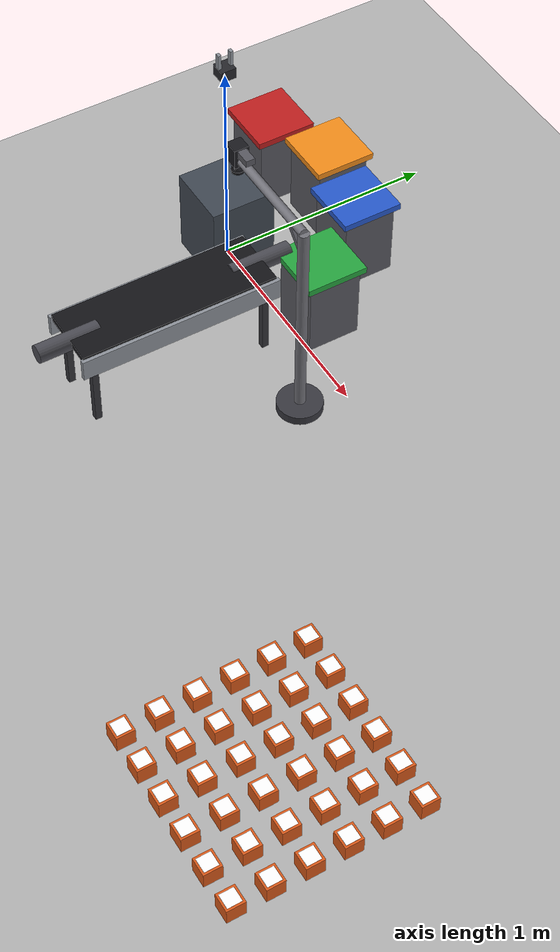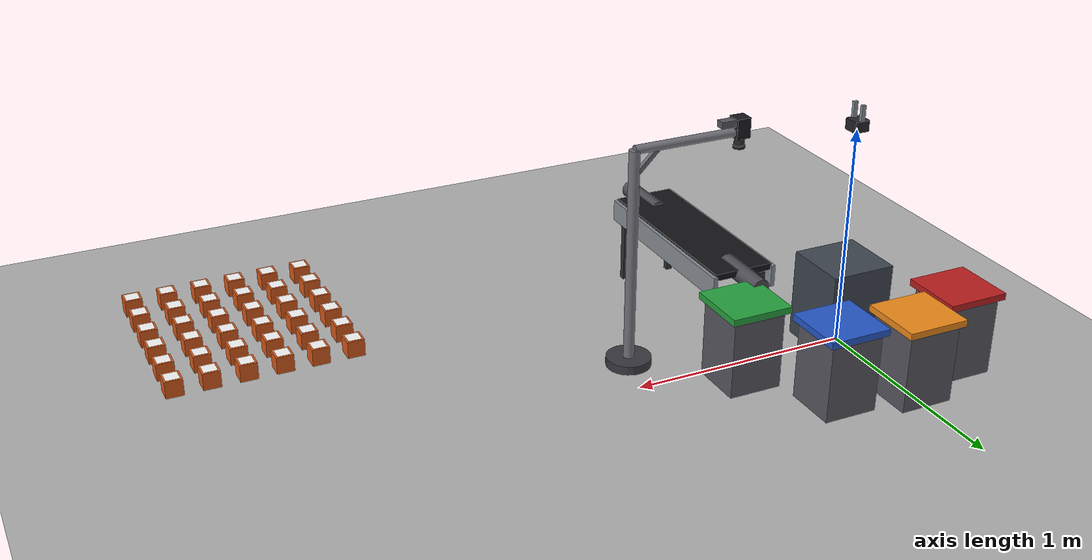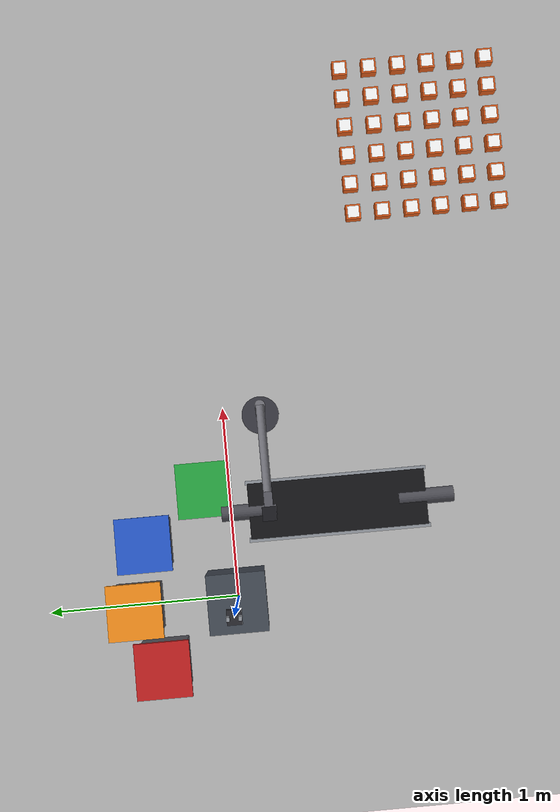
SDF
<?xml version="1.0" ?>
<sdf version="1.9">
  <world name="cell_world">

    <physics name="1ms" type="ignored">
      <max_step_size>0.001</max_step_size>
      <real_time_factor>1.0</real_time_factor>
    </physics>
    <plugin filename="gz-sim-physics-system"
            name="gz::sim::systems::Physics"/>
    <plugin filename="gz-sim-user-commands-system"
            name="gz::sim::systems::UserCommands"/>
    <plugin filename="gz-sim-scene-broadcaster-system"
            name="gz::sim::systems::SceneBroadcaster"/>
    <plugin filename="gz-sim-sensors-system"
            name="gz::sim::systems::Sensors">
      <render_engine>ogre2</render_engine>
    </plugin>

    <light type="directional" name="sun">
      <cast_shadows>true</cast_shadows>
      <pose>0 0 10 0 0 0</pose>
      <diffuse>1 1 1 1</diffuse>
      <specular>0.5 0.5 0.5 1</specular>
      <direction>-0.4 0.3 -1</direction>
    </light>

    <!-- ground -->
    <model name="factory_floor">
      <static>true</static>
      <link name="link">
        <collision name="c"><geometry><plane><normal>0 0 1</normal>
          <size>10 10</size></plane></geometry></collision>
        <visual name="v"><geometry><plane><normal>0 0 1</normal>
          <size>10 10</size></plane></geometry>
          <material><diffuse>0.7 0.7 0.7 1</diffuse></material></visual>
      </link>
    </model>

    <!-- ARM PEDESTAL: 0.40 m tall box under the UR5e at origin -->
    <model name="arm_pedestal">
      <static>true</static>
      <pose>0 0 0.20 0 0 0</pose>   <!-- center at 0.20 => top at 0.40 -->
      <link name="link">
        <collision name="c"><geometry><box><size>0.30 0.30 0.40</size></box></geometry></collision>
        <visual name="v"><geometry><box><size>0.30 0.30 0.40</size></box></geometry>
          <material><diffuse>0.25 0.28 0.32 1</diffuse></material></visual>
      </link>
    </model>

    <model name="conveyor">
      <static>true</static>
      <pose>0.45 -0.55 0 0 0 0</pose>
      <link name="link">

        <!-- rubber belt surface (thin dark top at z~0.40) -->
        <visual name="belt">
          <pose>0 0 0.385 0 0 0</pose>
          <geometry><box><size>0.28 0.90 0.03</size></box></geometry>
          <material><diffuse>0.08 0.08 0.09 1</diffuse>
            <specular>0.2 0.2 0.2 1</specular></material>
        </visual>

        <!-- metal side rails (left / right along the run) -->
        <visual name="rail_left">
          <pose>0.145 0 0.34 0 0 0</pose>
          <geometry><box><size>0.02 0.92 0.10</size></box></geometry>
          <material><diffuse>0.55 0.57 0.60 1</diffuse>
            <specular>0.6 0.6 0.6 1</specular></material>
        </visual>
        <visual name="rail_right">
          <pose>-0.145 0 0.34 0 0 0</pose>
          <geometry><box><size>0.02 0.92 0.10</size></box></geometry>
          <material><diffuse>0.55 0.57 0.60 1</diffuse>
            <specular>0.6 0.6 0.6 1</specular></material>
        </visual>

        <!-- end rollers (cylinders across the belt at each end) -->
        <visual name="roller_front">
          <pose>0 0.45 0.37 1.5708 0 0</pose>
          <geometry><cylinder><radius>0.04</radius><length>0.28</length></cylinder></geometry>
          <material><diffuse>0.3 0.3 0.33 1</diffuse></material>
        </visual>
        <visual name="roller_back">
          <pose>0 -0.45 0.37 1.5708 0 0</pose>
          <geometry><cylinder><radius>0.04</radius><length>0.28</length></cylinder></geometry>
          <material><diffuse>0.3 0.3 0.33 1</diffuse></material>
        </visual>

        <!-- support legs (4) -->
        <visual name="leg_1"><pose>0.12 0.40 0.17 0 0 0</pose>
          <geometry><box><size>0.03 0.03 0.34</size></box></geometry>
          <material><diffuse>0.2 0.2 0.22 1</diffuse></material></visual>
        <visual name="leg_2"><pose>-0.12 0.40 0.17 0 0 0</pose>
          <geometry><box><size>0.03 0.03 0.34</size></box></geometry>
          <material><diffuse>0.2 0.2 0.22 1</diffuse></material></visual>
        <visual name="leg_3"><pose>0.12 -0.40 0.17 0 0 0</pose>
          <geometry><box><size>0.03 0.03 0.34</size></box></geometry>
          <material><diffuse>0.2 0.2 0.22 1</diffuse></material></visual>
        <visual name="leg_4"><pose>-0.12 -0.40 0.17 0 0 0</pose>
          <geometry><box><size>0.03 0.03 0.34</size></box></geometry>
          <material><diffuse>0.2 0.2 0.22 1</diffuse></material></visual>

        <!-- single simple collision block (part rests on belt top) -->
        <collision name="c">
          <pose>0 0 0.35 0 0 0</pose>
          <geometry><box><size>0.28 0.90 0.10</size></box></geometry>
        </collision>
      </link>
    </model>

    <!-- TOWER TABLE: 0.40 m table under the stacking area (0.45, 0.20) -->

    <!-- initial single part (for the arm-motion / grasp test before the
         spawner is added). Sits on the conveyor at the pick point. -->

    <!-- VISUAL parallel-jaw gripper. Spawned here; gripper_follower node
         glues it to tool0. Starts near the arm flange. -->
    <model name="gripper">
      <pose>0 0 1.0 0 0 0</pose>
      <link name="link">
        <!-- gripper body -->
        <visual name="body">
          <pose>0 0 0.025 0 0 0</pose>
          <geometry><box><size>0.07 0.07 0.05</size></box></geometry>
          <material><diffuse>0.15 0.15 0.17 1</diffuse></material>
        </visual>
        <!-- left finger -->
        <visual name="finger_l">
          <pose>0 0.028 0.085 0 0 0</pose>
          <geometry><box><size>0.02 0.015 0.07</size></box></geometry>
          <material><diffuse>0.55 0.57 0.6 1</diffuse></material>
        </visual>
        <!-- right finger -->
        <visual name="finger_r">
          <pose>0 -0.028 0.085 0 0 0</pose>
          <geometry><box><size>0.02 0.015 0.07</size></box></geometry>
          <material><diffuse>0.55 0.57 0.6 1</diffuse></material>
        </visual>
        <inertial><mass>0.001</mass>
          <inertia><ixx>1e-6</ixx><iyy>1e-6</iyy><izz>1e-6</izz>
                   <ixy>0</ixy><ixz>0</ixz><iyz>0</iyz></inertia></inertial>
      </link>
      <!-- no gravity: it's kinematically driven by the follower -->
      <static>false</static>
    </model>

    <model name="cube_0">
      <pose>2.0 -1.6 0.04 0 0 0</pose>
      <link name="link">
        <gravity>0</gravity>
        <inertial><mass>0.2</mass>
          <inertia><ixx>2e-4</ixx><iyy>2e-4</iyy><izz>2e-4</izz>
                   <ixy>0</ixy><ixz>0</ixz><iyz>0</iyz></inertia></inertial>
        <visual name="body">
          <geometry><box><size>0.08 0.08 0.08</size></box></geometry>
          <material><diffuse>0.85 0.35 0.1 1</diffuse></material>
        </visual>
        <visual name="label">
          <pose>0 0 0.0405 0 0 0</pose>
          <geometry><box><size>0.062 0.062 0.001</size></box></geometry>
          <material>
            <ambient>1 1 1 1</ambient><diffuse>1 1 1 1</diffuse>
            <pbr><metal>
              <albedo_map>/home/cxt13/openplc_ros2_cell_ws/src/pick_place_cell_gazebo/models/parcel_labels/materials/textures/label_0.png</albedo_map>
              <metalness>0.0</metalness><roughness>1.0</roughness>
            </metal></pbr>
          </material>
        </visual>
      </link>
    </model>
    <model name="cube_1">
      <pose>2.16 -1.6 0.04 0 0 0</pose>
      <link name="link">
        <gravity>0</gravity>
        <inertial><mass>0.2</mass>
          <inertia><ixx>2e-4</ixx><iyy>2e-4</iyy><izz>2e-4</izz>
                   <ixy>0</ixy><ixz>0</ixz><iyz>0</iyz></inertia></inertial>
        <visual name="body">
          <geometry><box><size>0.08 0.08 0.08</size></box></geometry>
          <material><diffuse>0.85 0.35 0.1 1</diffuse></material>
        </visual>
        <visual name="label">
          <pose>0 0 0.0405 0 0 0</pose>
          <geometry><box><size>0.062 0.062 0.001</size></box></geometry>
          <material>
            <ambient>1 1 1 1</ambient><diffuse>1 1 1 1</diffuse>
            <pbr><metal>
              <albedo_map>/home/cxt13/openplc_ros2_cell_ws/src/pick_place_cell_gazebo/models/parcel_labels/materials/textures/label_1.png</albedo_map>
              <metalness>0.0</metalness><roughness>1.0</roughness>
            </metal></pbr>
          </material>
        </visual>
      </link>
    </model>
    <model name="cube_2">
      <pose>2.32 -1.6 0.04 0 0 0</pose>
      <link name="link">
        <gravity>0</gravity>
        <inertial><mass>0.2</mass>
          <inertia><ixx>2e-4</ixx><iyy>2e-4</iyy><izz>2e-4</izz>
                   <ixy>0</ixy><ixz>0</ixz><iyz>0</iyz></inertia></inertial>
        <visual name="body">
          <geometry><box><size>0.08 0.08 0.08</size></box></geometry>
          <material><diffuse>0.85 0.35 0.1 1</diffuse></material>
        </visual>
        <visual name="label">
          <pose>0 0 0.0405 0 0 0</pose>
          <geometry><box><size>0.062 0.062 0.001</size></box></geometry>
          <material>
            <ambient>1 1 1 1</ambient><diffuse>1 1 1 1</diffuse>
            <pbr><metal>
              <albedo_map>/home/cxt13/openplc_ros2_cell_ws/src/pick_place_cell_gazebo/models/parcel_labels/materials/textures/label_2.png</albedo_map>
              <metalness>0.0</metalness><roughness>1.0</roughness>
            </metal></pbr>
          </material>
        </visual>
      </link>
    </model>
    <model name="cube_3">
      <pose>2.48 -1.6 0.04 0 0 0</pose>
      <link name="link">
        <gravity>0</gravity>
        <inertial><mass>0.2</mass>
          <inertia><ixx>2e-4</ixx><iyy>2e-4</iyy><izz>2e-4</izz>
                   <ixy>0</ixy><ixz>0</ixz><iyz>0</iyz></inertia></inertial>
        <visual name="body">
          <geometry><box><size>0.08 0.08 0.08</size></box></geometry>
          <material><diffuse>0.85 0.35 0.1 1</diffuse></material>
        </visual>
        <visual name="label">
          <pose>0 0 0.0405 0 0 0</pose>
          <geometry><box><size>0.062 0.062 0.001</size></box></geometry>
          <material>
            <ambient>1 1 1 1</ambient><diffuse>1 1 1 1</diffuse>
            <pbr><metal>
              <albedo_map>/home/cxt13/openplc_ros2_cell_ws/src/pick_place_cell_gazebo/models/parcel_labels/materials/textures/label_3.png</albedo_map>
              <metalness>0.0</metalness><roughness>1.0</roughness>
            </metal></pbr>
          </material>
        </visual>
      </link>
    </model>
    <model name="cube_4">
      <pose>2.64 -1.6 0.04 0 0 0</pose>
      <link name="link">
        <gravity>0</gravity>
        <inertial><mass>0.2</mass>
          <inertia><ixx>2e-4</ixx><iyy>2e-4</iyy><izz>2e-4</izz>
                   <ixy>0</ixy><ixz>0</ixz><iyz>0</iyz></inertia></inertial>
        <visual name="body">
          <geometry><box><size>0.08 0.08 0.08</size></box></geometry>
          <material><diffuse>0.85 0.35 0.1 1</diffuse></material>
        </visual>
        <visual name="label">
          <pose>0 0 0.0405 0 0 0</pose>
          <geometry><box><size>0.062 0.062 0.001</size></box></geometry>
          <material>
            <ambient>1 1 1 1</ambient><diffuse>1 1 1 1</diffuse>
            <pbr><metal>
              <albedo_map>/home/cxt13/openplc_ros2_cell_ws/src/pick_place_cell_gazebo/models/parcel_labels/materials/textures/label_4.png</albedo_map>
              <metalness>0.0</metalness><roughness>1.0</roughness>
            </metal></pbr>
          </material>
        </visual>
      </link>
    </model>
    <model name="cube_5">
      <pose>2.8 -1.6 0.04 0 0 0</pose>
      <link name="link">
        <gravity>0</gravity>
        <inertial><mass>0.2</mass>
          <inertia><ixx>2e-4</ixx><iyy>2e-4</iyy><izz>2e-4</izz>
                   <ixy>0</ixy><ixz>0</ixz><iyz>0</iyz></inertia></inertial>
        <visual name="body">
          <geometry><box><size>0.08 0.08 0.08</size></box></geometry>
          <material><diffuse>0.85 0.35 0.1 1</diffuse></material>
        </visual>
        <visual name="label">
          <pose>0 0 0.0405 0 0 0</pose>
          <geometry><box><size>0.062 0.062 0.001</size></box></geometry>
          <material>
            <ambient>1 1 1 1</ambient><diffuse>1 1 1 1</diffuse>
            <pbr><metal>
              <albedo_map>/home/cxt13/openplc_ros2_cell_ws/src/pick_place_cell_gazebo/models/parcel_labels/materials/textures/label_5.png</albedo_map>
              <metalness>0.0</metalness><roughness>1.0</roughness>
            </metal></pbr>
          </material>
        </visual>
      </link>
    </model>
    <model name="cube_6">
      <pose>2.0 -1.44 0.04 0 0 0</pose>
      <link name="link">
        <gravity>0</gravity>
        <inertial><mass>0.2</mass>
          <inertia><ixx>2e-4</ixx><iyy>2e-4</iyy><izz>2e-4</izz>
                   <ixy>0</ixy><ixz>0</ixz><iyz>0</iyz></inertia></inertial>
        <visual name="body">
          <geometry><box><size>0.08 0.08 0.08</size></box></geometry>
          <material><diffuse>0.85 0.35 0.1 1</diffuse></material>
        </visual>
        <visual name="label">
          <pose>0 0 0.0405 0 0 0</pose>
          <geometry><box><size>0.062 0.062 0.001</size></box></geometry>
          <material>
            <ambient>1 1 1 1</ambient><diffuse>1 1 1 1</diffuse>
            <pbr><metal>
              <albedo_map>/home/cxt13/openplc_ros2_cell_ws/src/pick_place_cell_gazebo/models/parcel_labels/materials/textures/label_6.png</albedo_map>
              <metalness>0.0</metalness><roughness>1.0</roughness>
            </metal></pbr>
          </material>
        </visual>
      </link>
    </model>
    <model name="cube_7">
      <pose>2.16 -1.44 0.04 0 0 0</pose>
      <link name="link">
        <gravity>0</gravity>
        <inertial><mass>0.2</mass>
          <inertia><ixx>2e-4</ixx><iyy>2e-4</iyy><izz>2e-4</izz>
                   <ixy>0</ixy><ixz>0</ixz><iyz>0</iyz></inertia></inertial>
        <visual name="body">
          <geometry><box><size>0.08 0.08 0.08</size></box></geometry>
          <material><diffuse>0.85 0.35 0.1 1</diffuse></material>
        </visual>
        <visual name="label">
          <pose>0 0 0.0405 0 0 0</pose>
          <geometry><box><size>0.062 0.062 0.001</size></box></geometry>
          <material>
            <ambient>1 1 1 1</ambient><diffuse>1 1 1 1</diffuse>
            <pbr><metal>
              <albedo_map>/home/cxt13/openplc_ros2_cell_ws/src/pick_place_cell_gazebo/models/parcel_labels/materials/textures/label_7.png</albedo_map>
              <metalness>0.0</metalness><roughness>1.0</roughness>
            </metal></pbr>
          </material>
        </visual>
      </link>
    </model>
    <model name="cube_8">
      <pose>2.32 -1.44 0.04 0 0 0</pose>
      <link name="link">
        <gravity>0</gravity>
        <inertial><mass>0.2</mass>
          <inertia><ixx>2e-4</ixx><iyy>2e-4</iyy><izz>2e-4</izz>
                   <ixy>0</ixy><ixz>0</ixz><iyz>0</iyz></inertia></inertial>
        <visual name="body">
          <geometry><box><size>0.08 0.08 0.08</size></box></geometry>
          <material><diffuse>0.85 0.35 0.1 1</diffuse></material>
        </visual>
        <visual name="label">
          <pose>0 0 0.0405 0 0 0</pose>
          <geometry><box><size>0.062 0.062 0.001</size></box></geometry>
          <material>
            <ambient>1 1 1 1</ambient><diffuse>1 1 1 1</diffuse>
            <pbr><metal>
              <albedo_map>/home/cxt13/openplc_ros2_cell_ws/src/pick_place_cell_gazebo/models/parcel_labels/materials/textures/label_8.png</albedo_map>
              <metalness>0.0</metalness><roughness>1.0</roughness>
            </metal></pbr>
          </material>
        </visual>
      </link>
    </model>
    <model name="cube_9">
      <pose>2.48 -1.44 0.04 0 0 0</pose>
      <link name="link">
        <gravity>0</gravity>
        <inertial><mass>0.2</mass>
          <inertia><ixx>2e-4</ixx><iyy>2e-4</iyy><izz>2e-4</izz>
                   <ixy>0</ixy><ixz>0</ixz><iyz>0</iyz></inertia></inertial>
        <visual name="body">
          <geometry><box><size>0.08 0.08 0.08</size></box></geometry>
          <material><diffuse>0.85 0.35 0.1 1</diffuse></material>
        </visual>
        <visual name="label">
          <pose>0 0 0.0405 0 0 0</pose>
          <geometry><box><size>0.062 0.062 0.001</size></box></geometry>
          <material>
            <ambient>1 1 1 1</ambient><diffuse>1 1 1 1</diffuse>
            <pbr><metal>
              <albedo_map>/home/cxt13/openplc_ros2_cell_ws/src/pick_place_cell_gazebo/models/parcel_labels/materials/textures/label_9.png</albedo_map>
              <metalness>0.0</metalness><roughness>1.0</roughness>
            </metal></pbr>
          </material>
        </visual>
      </link>
    </model>
    <model name="cube_10">
      <pose>2.64 -1.44 0.04 0 0 0</pose>
      <link name="link">
        <gravity>0</gravity>
        <inertial><mass>0.2</mass>
          <inertia><ixx>2e-4</ixx><iyy>2e-4</iyy><izz>2e-4</izz>
                   <ixy>0</ixy><ixz>0</ixz><iyz>0</iyz></inertia></inertial>
        <visual name="body">
          <geometry><box><size>0.08 0.08 0.08</size></box></geometry>
          <material><diffuse>0.85 0.35 0.1 1</diffuse></material>
        </visual>
        <visual name="label">
          <pose>0 0 0.0405 0 0 0</pose>
          <geometry><box><size>0.062 0.062 0.001</size></box></geometry>
          <material>
            <ambient>1 1 1 1</ambient><diffuse>1 1 1 1</diffuse>
            <pbr><metal>
              <albedo_map>/home/cxt13/openplc_ros2_cell_ws/src/pick_place_cell_gazebo/models/parcel_labels/materials/textures/label_10.png</albedo_map>
              <metalness>0.0</metalness><roughness>1.0</roughness>
            </metal></pbr>
          </material>
        </visual>
      </link>
    </model>
    <model name="cube_11">
      <pose>2.8 -1.44 0.04 0 0 0</pose>
      <link name="link">
        <gravity>0</gravity>
        <inertial><mass>0.2</mass>
          <inertia><ixx>2e-4</ixx><iyy>2e-4</iyy><izz>2e-4</izz>
                   <ixy>0</ixy><ixz>0</ixz><iyz>0</iyz></inertia></inertial>
        <visual name="body">
          <geometry><box><size>0.08 0.08 0.08</size></box></geometry>
          <material><diffuse>0.85 0.35 0.1 1</diffuse></material>
        </visual>
        <visual name="label">
          <pose>0 0 0.0405 0 0 0</pose>
          <geometry><box><size>0.062 0.062 0.001</size></box></geometry>
          <material>
            <ambient>1 1 1 1</ambient><diffuse>1 1 1 1</diffuse>
            <pbr><metal>
              <albedo_map>/home/cxt13/openplc_ros2_cell_ws/src/pick_place_cell_gazebo/models/parcel_labels/materials/textures/label_11.png</albedo_map>
              <metalness>0.0</metalness><roughness>1.0</roughness>
            </metal></pbr>
          </material>
        </visual>
      </link>
    </model>
    <model name="cube_12">
      <pose>2.0 -1.28 0.04 0 0 0</pose>
      <link name="link">
        <gravity>0</gravity>
        <inertial><mass>0.2</mass>
          <inertia><ixx>2e-4</ixx><iyy>2e-4</iyy><izz>2e-4</izz>
                   <ixy>0</ixy><ixz>0</ixz><iyz>0</iyz></inertia></inertial>
        <visual name="body">
          <geometry><box><size>0.08 0.08 0.08</size></box></geometry>
          <material><diffuse>0.85 0.35 0.1 1</diffuse></material>
        </visual>
        <visual name="label">
          <pose>0 0 0.0405 0 0 0</pose>
          <geometry><box><size>0.062 0.062 0.001</size></box></geometry>
          <material>
            <ambient>1 1 1 1</ambient><diffuse>1 1 1 1</diffuse>
            <pbr><metal>
              <albedo_map>/home/cxt13/openplc_ros2_cell_ws/src/pick_place_cell_gazebo/models/parcel_labels/materials/textures/label_12.png</albedo_map>
              <metalness>0.0</metalness><roughness>1.0</roughness>
            </metal></pbr>
          </material>
        </visual>
      </link>
    </model>
    <model name="cube_13">
      <pose>2.16 -1.28 0.04 0 0 0</pose>
      <link name="link">
        <gravity>0</gravity>
        <inertial><mass>0.2</mass>
          <inertia><ixx>2e-4</ixx><iyy>2e-4</iyy><izz>2e-4</izz>
                   <ixy>0</ixy><ixz>0</ixz><iyz>0</iyz></inertia></inertial>
        <visual name="body">
          <geometry><box><size>0.08 0.08 0.08</size></box></geometry>
          <material><diffuse>0.85 0.35 0.1 1</diffuse></material>
        </visual>
        <visual name="label">
          <pose>0 0 0.0405 0 0 0</pose>
          <geometry><box><size>0.062 0.062 0.001</size></box></geometry>
          <material>
            <ambient>1 1 1 1</ambient><diffuse>1 1 1 1</diffuse>
            <pbr><metal>
              <albedo_map>/home/cxt13/openplc_ros2_cell_ws/src/pick_place_cell_gazebo/models/parcel_labels/materials/textures/label_13.png</albedo_map>
              <metalness>0.0</metalness><roughness>1.0</roughness>
            </metal></pbr>
          </material>
        </visual>
      </link>
    </model>
    <model name="cube_14">
      <pose>2.32 -1.28 0.04 0 0 0</pose>
      <link name="link">
        <gravity>0</gravity>
        <inertial><mass>0.2</mass>
          <inertia><ixx>2e-4</ixx><iyy>2e-4</iyy><izz>2e-4</izz>
                   <ixy>0</ixy><ixz>0</ixz><iyz>0</iyz></inertia></inertial>
        <visual name="body">
          <geometry><box><size>0.08 0.08 0.08</size></box></geometry>
          <material><diffuse>0.85 0.35 0.1 1</diffuse></material>
        </visual>
        <visual name="label">
          <pose>0 0 0.0405 0 0 0</pose>
          <geometry><box><size>0.062 0.062 0.001</size></box></geometry>
          <material>
            <ambient>1 1 1 1</ambient><diffuse>1 1 1 1</diffuse>
            <pbr><metal>
              <albedo_map>/home/cxt13/openplc_ros2_cell_ws/src/pick_place_cell_gazebo/models/parcel_labels/materials/textures/label_14.png</albedo_map>
              <metalness>0.0</metalness><roughness>1.0</roughness>
            </metal></pbr>
          </material>
        </visual>
      </link>
    </model>
    <model name="cube_15">
      <pose>2.48 -1.28 0.04 0 0 0</pose>
      <link name="link">
        <gravity>0</gravity>
        <inertial><mass>0.2</mass>
          <inertia><ixx>2e-4</ixx><iyy>2e-4</iyy><izz>2e-4</izz>
                   <ixy>0</ixy><ixz>0</ixz><iyz>0</iyz></inertia></inertial>
        <visual name="body">
          <geometry><box><size>0.08 0.08 0.08</size></box></geometry>
          <material><diffuse>0.85 0.35 0.1 1</diffuse></material>
        </visual>
        <visual name="label">
          <pose>0 0 0.0405 0 0 0</pose>
          <geometry><box><size>0.062 0.062 0.001</size></box></geometry>
          <material>
            <ambient>1 1 1 1</ambient><diffuse>1 1 1 1</diffuse>
            <pbr><metal>
              <albedo_map>/home/cxt13/openplc_ros2_cell_ws/src/pick_place_cell_gazebo/models/parcel_labels/materials/textures/label_15.png</albedo_map>
              <metalness>0.0</metalness><roughness>1.0</roughness>
            </metal></pbr>
          </material>
        </visual>
      </link>
    </model>
    <model name="cube_16">
      <pose>2.64 -1.28 0.04 0 0 0</pose>
      <link name="link">
        <gravity>0</gravity>
        <inertial><mass>0.2</mass>
          <inertia><ixx>2e-4</ixx><iyy>2e-4</iyy><izz>2e-4</izz>
                   <ixy>0</ixy><ixz>0</ixz><iyz>0</iyz></inertia></inertial>
        <visual name="body">
          <geometry><box><size>0.08 0.08 0.08</size></box></geometry>
          <material><diffuse>0.85 0.35 0.1 1</diffuse></material>
        </visual>
        <visual name="label">
          <pose>0 0 0.0405 0 0 0</pose>
          <geometry><box><size>0.062 0.062 0.001</size></box></geometry>
          <material>
            <ambient>1 1 1 1</ambient><diffuse>1 1 1 1</diffuse>
            <pbr><metal>
              <albedo_map>/home/cxt13/openplc_ros2_cell_ws/src/pick_place_cell_gazebo/models/parcel_labels/materials/textures/label_16.png</albedo_map>
              <metalness>0.0</metalness><roughness>1.0</roughness>
            </metal></pbr>
          </material>
        </visual>
      </link>
    </model>
    <model name="cube_17">
      <pose>2.8 -1.28 0.04 0 0 0</pose>
      <link name="link">
        <gravity>0</gravity>
        <inertial><mass>0.2</mass>
          <inertia><ixx>2e-4</ixx><iyy>2e-4</iyy><izz>2e-4</izz>
                   <ixy>0</ixy><ixz>0</ixz><iyz>0</iyz></inertia></inertial>
        <visual name="body">
          <geometry><box><size>0.08 0.08 0.08</size></box></geometry>
          <material><diffuse>0.85 0.35 0.1 1</diffuse></material>
        </visual>
        <visual name="label">
          <pose>0 0 0.0405 0 0 0</pose>
          <geometry><box><size>0.062 0.062 0.001</size></box></geometry>
          <material>
            <ambient>1 1 1 1</ambient><diffuse>1 1 1 1</diffuse>
            <pbr><metal>
              <albedo_map>/home/cxt13/openplc_ros2_cell_ws/src/pick_place_cell_gazebo/models/parcel_labels/materials/textures/label_17.png</albedo_map>
              <metalness>0.0</metalness><roughness>1.0</roughness>
            </metal></pbr>
          </material>
        </visual>
      </link>
    </model>
    <model name="cube_18">
      <pose>2.0 -1.12 0.04 0 0 0</pose>
      <link name="link">
        <gravity>0</gravity>
        <inertial><mass>0.2</mass>
          <inertia><ixx>2e-4</ixx><iyy>2e-4</iyy><izz>2e-4</izz>
                   <ixy>0</ixy><ixz>0</ixz><iyz>0</iyz></inertia></inertial>
        <visual name="body">
          <geometry><box><size>0.08 0.08 0.08</size></box></geometry>
          <material><diffuse>0.85 0.35 0.1 1</diffuse></material>
        </visual>
        <visual name="label">
          <pose>0 0 0.0405 0 0 0</pose>
          <geometry><box><size>0.062 0.062 0.001</size></box></geometry>
          <material>
            <ambient>1 1 1 1</ambient><diffuse>1 1 1 1</diffuse>
            <pbr><metal>
              <albedo_map>/home/cxt13/openplc_ros2_cell_ws/src/pick_place_cell_gazebo/models/parcel_labels/materials/textures/label_18.png</albedo_map>
              <metalness>0.0</metalness><roughness>1.0</roughness>
            </metal></pbr>
          </material>
        </visual>
      </link>
    </model>
    <model name="cube_19">
      <pose>2.16 -1.12 0.04 0 0 0</pose>
      <link name="link">
        <gravity>0</gravity>
        <inertial><mass>0.2</mass>
          <inertia><ixx>2e-4</ixx><iyy>2e-4</iyy><izz>2e-4</izz>
                   <ixy>0</ixy><ixz>0</ixz><iyz>0</iyz></inertia></inertial>
        <visual name="body">
          <geometry><box><size>0.08 0.08 0.08</size></box></geometry>
          <material><diffuse>0.85 0.35 0.1 1</diffuse></material>
        </visual>
        <visual name="label">
          <pose>0 0 0.0405 0 0 0</pose>
          <geometry><box><size>0.062 0.062 0.001</size></box></geometry>
          <material>
            <ambient>1 1 1 1</ambient><diffuse>1 1 1 1</diffuse>
            <pbr><metal>
              <albedo_map>/home/cxt13/openplc_ros2_cell_ws/src/pick_place_cell_gazebo/models/parcel_labels/materials/textures/label_19.png</albedo_map>
              <metalness>0.0</metalness><roughness>1.0</roughness>
            </metal></pbr>
          </material>
        </visual>
      </link>
    </model>
    <model name="cube_20">
      <pose>2.32 -1.12 0.04 0 0 0</pose>
      <link name="link">
        <gravity>0</gravity>
        <inertial><mass>0.2</mass>
          <inertia><ixx>2e-4</ixx><iyy>2e-4</iyy><izz>2e-4</izz>
                   <ixy>0</ixy><ixz>0</ixz><iyz>0</iyz></inertia></inertial>
        <visual name="body">
          <geometry><box><size>0.08 0.08 0.08</size></box></geometry>
          <material><diffuse>0.85 0.35 0.1 1</diffuse></material>
        </visual>
        <visual name="label">
          <pose>0 0 0.0405 0 0 0</pose>
          <geometry><box><size>0.062 0.062 0.001</size></box></geometry>
          <material>
            <ambient>1 1 1 1</ambient><diffuse>1 1 1 1</diffuse>
            <pbr><metal>
              <albedo_map>/home/cxt13/openplc_ros2_cell_ws/src/pick_place_cell_gazebo/models/parcel_labels/materials/textures/label_20.png</albedo_map>
              <metalness>0.0</metalness><roughness>1.0</roughness>
            </metal></pbr>
          </material>
        </visual>
      </link>
    </model>
    <model name="cube_21">
      <pose>2.48 -1.12 0.04 0 0 0</pose>
      <link name="link">
        <gravity>0</gravity>
        <inertial><mass>0.2</mass>
          <inertia><ixx>2e-4</ixx><iyy>2e-4</iyy><izz>2e-4</izz>
                   <ixy>0</ixy><ixz>0</ixz><iyz>0</iyz></inertia></inertial>
        <visual name="body">
          <geometry><box><size>0.08 0.08 0.08</size></box></geometry>
          <material><diffuse>0.85 0.35 0.1 1</diffuse></material>
        </visual>
        <visual name="label">
          <pose>0 0 0.0405 0 0 0</pose>
          <geometry><box><size>0.062 0.062 0.001</size></box></geometry>
          <material>
            <ambient>1 1 1 1</ambient><diffuse>1 1 1 1</diffuse>
            <pbr><metal>
              <albedo_map>/home/cxt13/openplc_ros2_cell_ws/src/pick_place_cell_gazebo/models/parcel_labels/materials/textures/label_21.png</albedo_map>
              <metalness>0.0</metalness><roughness>1.0</roughness>
            </metal></pbr>
          </material>
        </visual>
      </link>
    </model>
    <model name="cube_22">
      <pose>2.64 -1.12 0.04 0 0 0</pose>
      <link name="link">
        <gravity>0</gravity>
        <inertial><mass>0.2</mass>
          <inertia><ixx>2e-4</ixx><iyy>2e-4</iyy><izz>2e-4</izz>
                   <ixy>0</ixy><ixz>0</ixz><iyz>0</iyz></inertia></inertial>
        <visual name="body">
          <geometry><box><size>0.08 0.08 0.08</size></box></geometry>
          <material><diffuse>0.85 0.35 0.1 1</diffuse></material>
        </visual>
        <visual name="label">
          <pose>0 0 0.0405 0 0 0</pose>
          <geometry><box><size>0.062 0.062 0.001</size></box></geometry>
          <material>
            <ambient>1 1 1 1</ambient><diffuse>1 1 1 1</diffuse>
            <pbr><metal>
              <albedo_map>/home/cxt13/openplc_ros2_cell_ws/src/pick_place_cell_gazebo/models/parcel_labels/materials/textures/label_22.png</albedo_map>
              <metalness>0.0</metalness><roughness>1.0</roughness>
            </metal></pbr>
          </material>
        </visual>
      </link>
    </model>
    <model name="cube_23">
      <pose>2.8 -1.12 0.04 0 0 0</pose>
      <link name="link">
        <gravity>0</gravity>
        <inertial><mass>0.2</mass>
          <inertia><ixx>2e-4</ixx><iyy>2e-4</iyy><izz>2e-4</izz>
                   <ixy>0</ixy><ixz>0</ixz><iyz>0</iyz></inertia></inertial>
        <visual name="body">
          <geometry><box><size>0.08 0.08 0.08</size></box></geometry>
          <material><diffuse>0.85 0.35 0.1 1</diffuse></material>
        </visual>
        <visual name="label">
          <pose>0 0 0.0405 0 0 0</pose>
          <geometry><box><size>0.062 0.062 0.001</size></box></geometry>
          <material>
            <ambient>1 1 1 1</ambient><diffuse>1 1 1 1</diffuse>
            <pbr><metal>
              <albedo_map>/home/cxt13/openplc_ros2_cell_ws/src/pick_place_cell_gazebo/models/parcel_labels/materials/textures/label_23.png</albedo_map>
              <metalness>0.0</metalness><roughness>1.0</roughness>
            </metal></pbr>
          </material>
        </visual>
      </link>
    </model>
    <model name="cube_24">
      <pose>2.0 -0.96 0.04 0 0 0</pose>
      <link name="link">
        <gravity>0</gravity>
        <inertial><mass>0.2</mass>
          <inertia><ixx>2e-4</ixx><iyy>2e-4</iyy><izz>2e-4</izz>
                   <ixy>0</ixy><ixz>0</ixz><iyz>0</iyz></inertia></inertial>
        <visual name="body">
          <geometry><box><size>0.08 0.08 0.08</size></box></geometry>
          <material><diffuse>0.85 0.35 0.1 1</diffuse></material>
        </visual>
        <visual name="label">
          <pose>0 0 0.0405 0 0 0</pose>
          <geometry><box><size>0.062 0.062 0.001</size></box></geometry>
          <material>
            <ambient>1 1 1 1</ambient><diffuse>1 1 1 1</diffuse>
            <pbr><metal>
              <albedo_map>/home/cxt13/openplc_ros2_cell_ws/src/pick_place_cell_gazebo/models/parcel_labels/materials/textures/label_24.png</albedo_map>
              <metalness>0.0</metalness><roughness>1.0</roughness>
            </metal></pbr>
          </material>
        </visual>
      </link>
    </model>
    <model name="cube_25">
      <pose>2.16 -0.96 0.04 0 0 0</pose>
      <link name="link">
        <gravity>0</gravity>
        <inertial><mass>0.2</mass>
          <inertia><ixx>2e-4</ixx><iyy>2e-4</iyy><izz>2e-4</izz>
                   <ixy>0</ixy><ixz>0</ixz><iyz>0</iyz></inertia></inertial>
        <visual name="body">
          <geometry><box><size>0.08 0.08 0.08</size></box></geometry>
          <material><diffuse>0.85 0.35 0.1 1</diffuse></material>
        </visual>
        <visual name="label">
          <pose>0 0 0.0405 0 0 0</pose>
          <geometry><box><size>0.062 0.062 0.001</size></box></geometry>
          <material>
            <ambient>1 1 1 1</ambient><diffuse>1 1 1 1</diffuse>
            <pbr><metal>
              <albedo_map>/home/cxt13/openplc_ros2_cell_ws/src/pick_place_cell_gazebo/models/parcel_labels/materials/textures/label_25.png</albedo_map>
              <metalness>0.0</metalness><roughness>1.0</roughness>
            </metal></pbr>
          </material>
        </visual>
      </link>
    </model>
    <model name="cube_26">
      <pose>2.32 -0.96 0.04 0 0 0</pose>
      <link name="link">
        <gravity>0</gravity>
        <inertial><mass>0.2</mass>
          <inertia><ixx>2e-4</ixx><iyy>2e-4</iyy><izz>2e-4</izz>
                   <ixy>0</ixy><ixz>0</ixz><iyz>0</iyz></inertia></inertial>
        <visual name="body">
          <geometry><box><size>0.08 0.08 0.08</size></box></geometry>
          <material><diffuse>0.85 0.35 0.1 1</diffuse></material>
        </visual>
        <visual name="label">
          <pose>0 0 0.0405 0 0 0</pose>
          <geometry><box><size>0.062 0.062 0.001</size></box></geometry>
          <material>
            <ambient>1 1 1 1</ambient><diffuse>1 1 1 1</diffuse>
            <pbr><metal>
              <albedo_map>/home/cxt13/openplc_ros2_cell_ws/src/pick_place_cell_gazebo/models/parcel_labels/materials/textures/label_26.png</albedo_map>
              <metalness>0.0</metalness><roughness>1.0</roughness>
            </metal></pbr>
          </material>
        </visual>
      </link>
    </model>
    <model name="cube_27">
      <pose>2.48 -0.96 0.04 0 0 0</pose>
      <link name="link">
        <gravity>0</gravity>
        <inertial><mass>0.2</mass>
          <inertia><ixx>2e-4</ixx><iyy>2e-4</iyy><izz>2e-4</izz>
                   <ixy>0</ixy><ixz>0</ixz><iyz>0</iyz></inertia></inertial>
        <visual name="body">
          <geometry><box><size>0.08 0.08 0.08</size></box></geometry>
          <material><diffuse>0.85 0.35 0.1 1</diffuse></material>
        </visual>
        <visual name="label">
          <pose>0 0 0.0405 0 0 0</pose>
          <geometry><box><size>0.062 0.062 0.001</size></box></geometry>
          <material>
            <ambient>1 1 1 1</ambient><diffuse>1 1 1 1</diffuse>
            <pbr><metal>
              <albedo_map>/home/cxt13/openplc_ros2_cell_ws/src/pick_place_cell_gazebo/models/parcel_labels/materials/textures/label_27.png</albedo_map>
              <metalness>0.0</metalness><roughness>1.0</roughness>
            </metal></pbr>
          </material>
        </visual>
      </link>
    </model>
    <model name="cube_28">
      <pose>2.64 -0.96 0.04 0 0 0</pose>
      <link name="link">
        <gravity>0</gravity>
        <inertial><mass>0.2</mass>
          <inertia><ixx>2e-4</ixx><iyy>2e-4</iyy><izz>2e-4</izz>
                   <ixy>0</ixy><ixz>0</ixz><iyz>0</iyz></inertia></inertial>
        <visual name="body">
          <geometry><box><size>0.08 0.08 0.08</size></box></geometry>
          <material><diffuse>0.85 0.35 0.1 1</diffuse></material>
        </visual>
        <visual name="label">
          <pose>0 0 0.0405 0 0 0</pose>
          <geometry><box><size>0.062 0.062 0.001</size></box></geometry>
          <material>
            <ambient>1 1 1 1</ambient><diffuse>1 1 1 1</diffuse>
            <pbr><metal>
              <albedo_map>/home/cxt13/openplc_ros2_cell_ws/src/pick_place_cell_gazebo/models/parcel_labels/materials/textures/label_28.png</albedo_map>
              <metalness>0.0</metalness><roughness>1.0</roughness>
            </metal></pbr>
          </material>
        </visual>
      </link>
    </model>
    <model name="cube_29">
      <pose>2.8 -0.96 0.04 0 0 0</pose>
      <link name="link">
        <gravity>0</gravity>
        <inertial><mass>0.2</mass>
          <inertia><ixx>2e-4</ixx><iyy>2e-4</iyy><izz>2e-4</izz>
                   <ixy>0</ixy><ixz>0</ixz><iyz>0</iyz></inertia></inertial>
        <visual name="body">
          <geometry><box><size>0.08 0.08 0.08</size></box></geometry>
          <material><diffuse>0.85 0.35 0.1 1</diffuse></material>
        </visual>
        <visual name="label">
          <pose>0 0 0.0405 0 0 0</pose>
          <geometry><box><size>0.062 0.062 0.001</size></box></geometry>
          <material>
            <ambient>1 1 1 1</ambient><diffuse>1 1 1 1</diffuse>
            <pbr><metal>
              <albedo_map>/home/cxt13/openplc_ros2_cell_ws/src/pick_place_cell_gazebo/models/parcel_labels/materials/textures/label_29.png</albedo_map>
              <metalness>0.0</metalness><roughness>1.0</roughness>
            </metal></pbr>
          </material>
        </visual>
      </link>
    </model>
    <model name="cube_30">
      <pose>2.0 -0.8 0.04 0 0 0</pose>
      <link name="link">
        <gravity>0</gravity>
        <inertial><mass>0.2</mass>
          <inertia><ixx>2e-4</ixx><iyy>2e-4</iyy><izz>2e-4</izz>
                   <ixy>0</ixy><ixz>0</ixz><iyz>0</iyz></inertia></inertial>
        <visual name="body">
          <geometry><box><size>0.08 0.08 0.08</size></box></geometry>
          <material><diffuse>0.85 0.35 0.1 1</diffuse></material>
        </visual>
        <visual name="label">
          <pose>0 0 0.0405 0 0 0</pose>
          <geometry><box><size>0.062 0.062 0.001</size></box></geometry>
          <material>
            <ambient>1 1 1 1</ambient><diffuse>1 1 1 1</diffuse>
            <pbr><metal>
              <albedo_map>/home/cxt13/openplc_ros2_cell_ws/src/pick_place_cell_gazebo/models/parcel_labels/materials/textures/label_30.png</albedo_map>
              <metalness>0.0</metalness><roughness>1.0</roughness>
            </metal></pbr>
          </material>
        </visual>
      </link>
    </model>
    <model name="cube_31">
      <pose>2.16 -0.8 0.04 0 0 0</pose>
      <link name="link">
        <gravity>0</gravity>
        <inertial><mass>0.2</mass>
          <inertia><ixx>2e-4</ixx><iyy>2e-4</iyy><izz>2e-4</izz>
                   <ixy>0</ixy><ixz>0</ixz><iyz>0</iyz></inertia></inertial>
        <visual name="body">
          <geometry><box><size>0.08 0.08 0.08</size></box></geometry>
          <material><diffuse>0.85 0.35 0.1 1</diffuse></material>
        </visual>
        <visual name="label">
          <pose>0 0 0.0405 0 0 0</pose>
          <geometry><box><size>0.062 0.062 0.001</size></box></geometry>
          <material>
            <ambient>1 1 1 1</ambient><diffuse>1 1 1 1</diffuse>
            <pbr><metal>
              <albedo_map>/home/cxt13/openplc_ros2_cell_ws/src/pick_place_cell_gazebo/models/parcel_labels/materials/textures/label_31.png</albedo_map>
              <metalness>0.0</metalness><roughness>1.0</roughness>
            </metal></pbr>
          </material>
        </visual>
      </link>
    </model>
    <model name="cube_32">
      <pose>2.32 -0.8 0.04 0 0 0</pose>
      <link name="link">
        <gravity>0</gravity>
        <inertial><mass>0.2</mass>
          <inertia><ixx>2e-4</ixx><iyy>2e-4</iyy><izz>2e-4</izz>
                   <ixy>0</ixy><ixz>0</ixz><iyz>0</iyz></inertia></inertial>
        <visual name="body">
          <geometry><box><size>0.08 0.08 0.08</size></box></geometry>
          <material><diffuse>0.85 0.35 0.1 1</diffuse></material>
        </visual>
        <visual name="label">
          <pose>0 0 0.0405 0 0 0</pose>
          <geometry><box><size>0.062 0.062 0.001</size></box></geometry>
          <material>
            <ambient>1 1 1 1</ambient><diffuse>1 1 1 1</diffuse>
            <pbr><metal>
              <albedo_map>/home/cxt13/openplc_ros2_cell_ws/src/pick_place_cell_gazebo/models/parcel_labels/materials/textures/label_32.png</albedo_map>
              <metalness>0.0</metalness><roughness>1.0</roughness>
            </metal></pbr>
          </material>
        </visual>
      </link>
    </model>
    <model name="cube_33">
      <pose>2.48 -0.8 0.04 0 0 0</pose>
      <link name="link">
        <gravity>0</gravity>
        <inertial><mass>0.2</mass>
          <inertia><ixx>2e-4</ixx><iyy>2e-4</iyy><izz>2e-4</izz>
                   <ixy>0</ixy><ixz>0</ixz><iyz>0</iyz></inertia></inertial>
        <visual name="body">
          <geometry><box><size>0.08 0.08 0.08</size></box></geometry>
          <material><diffuse>0.85 0.35 0.1 1</diffuse></material>
        </visual>
        <visual name="label">
          <pose>0 0 0.0405 0 0 0</pose>
          <geometry><box><size>0.062 0.062 0.001</size></box></geometry>
          <material>
            <ambient>1 1 1 1</ambient><diffuse>1 1 1 1</diffuse>
            <pbr><metal>
              <albedo_map>/home/cxt13/openplc_ros2_cell_ws/src/pick_place_cell_gazebo/models/parcel_labels/materials/textures/label_33.png</albedo_map>
              <metalness>0.0</metalness><roughness>1.0</roughness>
            </metal></pbr>
          </material>
        </visual>
      </link>
    </model>
    <model name="cube_34">
      <pose>2.64 -0.8 0.04 0 0 0</pose>
      <link name="link">
        <gravity>0</gravity>
        <inertial><mass>0.2</mass>
          <inertia><ixx>2e-4</ixx><iyy>2e-4</iyy><izz>2e-4</izz>
                   <ixy>0</ixy><ixz>0</ixz><iyz>0</iyz></inertia></inertial>
        <visual name="body">
          <geometry><box><size>0.08 0.08 0.08</size></box></geometry>
          <material><diffuse>0.85 0.35 0.1 1</diffuse></material>
        </visual>
        <visual name="label">
          <pose>0 0 0.0405 0 0 0</pose>
          <geometry><box><size>0.062 0.062 0.001</size></box></geometry>
          <material>
            <ambient>1 1 1 1</ambient><diffuse>1 1 1 1</diffuse>
            <pbr><metal>
              <albedo_map>/home/cxt13/openplc_ros2_cell_ws/src/pick_place_cell_gazebo/models/parcel_labels/materials/textures/label_34.png</albedo_map>
              <metalness>0.0</metalness><roughness>1.0</roughness>
            </metal></pbr>
          </material>
        </visual>
      </link>
    </model>
    <model name="cube_35">
      <pose>2.8 -0.8 0.04 0 0 0</pose>
      <link name="link">
        <gravity>0</gravity>
        <inertial><mass>0.2</mass>
          <inertia><ixx>2e-4</ixx><iyy>2e-4</iyy><izz>2e-4</izz>
                   <ixy>0</ixy><ixz>0</ixz><iyz>0</iyz></inertia></inertial>
        <visual name="body">
          <geometry><box><size>0.08 0.08 0.08</size></box></geometry>
          <material><diffuse>0.85 0.35 0.1 1</diffuse></material>
        </visual>
        <visual name="label">
          <pose>0 0 0.0405 0 0 0</pose>
          <geometry><box><size>0.062 0.062 0.001</size></box></geometry>
          <material>
            <ambient>1 1 1 1</ambient><diffuse>1 1 1 1</diffuse>
            <pbr><metal>
              <albedo_map>/home/cxt13/openplc_ros2_cell_ws/src/pick_place_cell_gazebo/models/parcel_labels/materials/textures/label_35.png</albedo_map>
              <metalness>0.0</metalness><roughness>1.0</roughness>
            </metal></pbr>
          </material>
        </visual>
      </link>
    </model>
    <model name="pallet_A">
      <static>true</static>
      <pose>0.58 0.12 0 0 0 0</pose>
      <link name="link">
        <collision name="c">
          <pose>0 0 0.18 0 0 0</pose>
          <geometry><box><size>0.26 0.26 0.36</size></box></geometry>
        </collision>
        <visual name="body">
          <pose>0 0 0.17 0 0 0</pose>
          <geometry><box><size>0.24 0.24 0.34</size></box></geometry>
          <material><diffuse>0.35 0.35 0.38 1</diffuse></material>
        </visual>
        <visual name="top">
          <pose>0 0 0.37 0 0 0</pose>
          <geometry><box><size>0.28 0.28 0.03</size></box></geometry>
          <material><diffuse>0.15 0.65 0.25 1</diffuse>
            <ambient>0.15 0.65 0.25 1</ambient></material>
        </visual>
      </link>
    </model>
    <model name="pallet_B">
      <static>true</static>
      <pose>0.33 0.45 0 0 0 0</pose>
      <link name="link">
        <collision name="c">
          <pose>0 0 0.18 0 0 0</pose>
          <geometry><box><size>0.26 0.26 0.36</size></box></geometry>
        </collision>
        <visual name="body">
          <pose>0 0 0.17 0 0 0</pose>
          <geometry><box><size>0.24 0.24 0.34</size></box></geometry>
          <material><diffuse>0.35 0.35 0.38 1</diffuse></material>
        </visual>
        <visual name="top">
          <pose>0 0 0.37 0 0 0</pose>
          <geometry><box><size>0.28 0.28 0.03</size></box></geometry>
          <material><diffuse>0.15 0.35 0.80 1</diffuse>
            <ambient>0.15 0.35 0.80 1</ambient></material>
        </visual>
      </link>
    </model>
    <model name="pallet_C">
      <static>true</static>
      <pose>0.0 0.52 0 0 0 0</pose>
      <link name="link">
        <collision name="c">
          <pose>0 0 0.18 0 0 0</pose>
          <geometry><box><size>0.26 0.26 0.36</size></box></geometry>
        </collision>
        <visual name="body">
          <pose>0 0 0.17 0 0 0</pose>
          <geometry><box><size>0.24 0.24 0.34</size></box></geometry>
          <material><diffuse>0.35 0.35 0.38 1</diffuse></material>
        </visual>
        <visual name="top">
          <pose>0 0 0.37 0 0 0</pose>
          <geometry><box><size>0.28 0.28 0.03</size></box></geometry>
          <material><diffuse>0.95 0.55 0.10 1</diffuse>
            <ambient>0.95 0.55 0.10 1</ambient></material>
        </visual>
      </link>
    </model>
    <model name="reject_bin">
      <static>true</static>
      <pose>-0.3 0.4 0 0 0 0</pose>
      <link name="link">
        <collision name="c">
          <pose>0 0 0.18 0 0 0</pose>
          <geometry><box><size>0.26 0.26 0.36</size></box></geometry>
        </collision>
        <visual name="body">
          <pose>0 0 0.17 0 0 0</pose>
          <geometry><box><size>0.24 0.24 0.34</size></box></geometry>
          <material><diffuse>0.35 0.35 0.38 1</diffuse></material>
        </visual>
        <visual name="top">
          <pose>0 0 0.37 0 0 0</pose>
          <geometry><box><size>0.28 0.28 0.03</size></box></geometry>
          <material><diffuse>0.75 0.12 0.12 1</diffuse>
            <ambient>0.75 0.12 0.12 1</ambient></material>
        </visual>
      </link>
    </model>
    <!-- Camera stand: base, post, boom reaching over the pick station -->
    <model name="camera_stand">
      <static>true</static>
      <pose>0.95 -0.2 0 0 0 0</pose>
      <link name="link">
        <visual name="base">
          <pose>0 0 0.02 0 0 0</pose>
          <geometry><cylinder><radius>0.10</radius><length>0.04</length></cylinder></geometry>
          <material><diffuse>0.22 0.22 0.25 1</diffuse></material>
        </visual>
        <visual name="post">
          <pose>0 0 0.500 0 0 0</pose>
          <geometry><cylinder><radius>0.024</radius><length>1.000</length></cylinder></geometry>
          <material><diffuse>0.45 0.45 0.48 1</diffuse></material>
        </visual>
        <visual name="boom">
          <pose>-0.250 0 1.000 0 1.5708 0</pose>
          <geometry><cylinder><radius>0.020</radius><length>0.500</length></cylinder></geometry>
          <material><diffuse>0.45 0.45 0.48 1</diffuse></material>
        </visual>
        <visual name="gusset">
          <pose>-0.06 0 0.940 0 0.7854 0</pose>
          <geometry><box><size>0.14 0.02 0.02</size></box></geometry>
          <material><diffuse>0.40 0.40 0.43 1</diffuse></material>
        </visual>
        <collision name="c">
          <pose>0 0 0.500 0 0 0</pose>
          <geometry><cylinder><radius>0.03</radius><length>1.000</length></cylinder></geometry>
        </collision>
      </link>
    </model>
    <!-- Eye-to-hand camera: body, lens barrel, hood, mounting bracket -->
    <model name="label_camera">
      <static>true</static>
      <pose>0.45 -0.2 1.0 0 1.5708 0</pose>
      <link name="link">
        <!-- bracket joining the camera up to the boom (boom is at world +X) -->
        <visual name="bracket">
          <pose>-0.045 0 0.055 0 0 0</pose>
          <geometry><box><size>0.03 0.04 0.09</size></box></geometry>
          <material><diffuse>0.35 0.35 0.38 1</diffuse></material>
        </visual>
        <!-- main body -->
        <visual name="body">
          <pose>-0.02 0 0 0 0 0</pose>
          <geometry><box><size>0.09 0.065 0.065</size></box></geometry>
          <material><diffuse>0.10 0.10 0.12 1</diffuse></material>
        </visual>
        <!-- lens barrel pointing along local +X (world -Z = down) -->
        <visual name="lens_barrel">
          <pose>0.035 0 0 0 1.5708 0</pose>
          <geometry><cylinder><radius>0.022</radius><length>0.045</length></cylinder></geometry>
          <material><diffuse>0.16 0.16 0.18 1</diffuse></material>
        </visual>
        <!-- glass element -->
        <visual name="lens_glass">
          <pose>0.059 0 0 0 1.5708 0</pose>
          <geometry><cylinder><radius>0.016</radius><length>0.004</length></cylinder></geometry>
          <material><diffuse>0.05 0.10 0.30 1</diffuse>
            <specular>0.8 0.9 1.0 1</specular></material>
        </visual>
        <!-- lens hood -->
        <visual name="hood">
          <pose>0.068 0 0 0 1.5708 0</pose>
          <geometry><cylinder><radius>0.027</radius><length>0.012</length></cylinder></geometry>
          <material><diffuse>0.08 0.08 0.09 1</diffuse></material>
        </visual>
        <!-- small status LED -->
        <visual name="led">
          <pose>-0.02 0.028 0.028 0 0 0</pose>
          <geometry><sphere><radius>0.005</radius></sphere></geometry>
          <material><diffuse>0.1 0.9 0.2 1</diffuse>
            <emissive>0.1 0.9 0.2 1</emissive></material>
        </visual>
        <sensor name="cam" type="camera">
          <camera>
            <horizontal_fov>1.1</horizontal_fov>
            <image><width>640</width><height>480</height><format>R8G8B8</format></image>
            <clip><near>0.1</near><far>5.0</far></clip>
          </camera>
          <always_on>1</always_on>
          <update_rate>15</update_rate>
          <topic>/cell/camera/image</topic>
        </sensor>
      </link>
    </model>
  </world>
</sdf>
